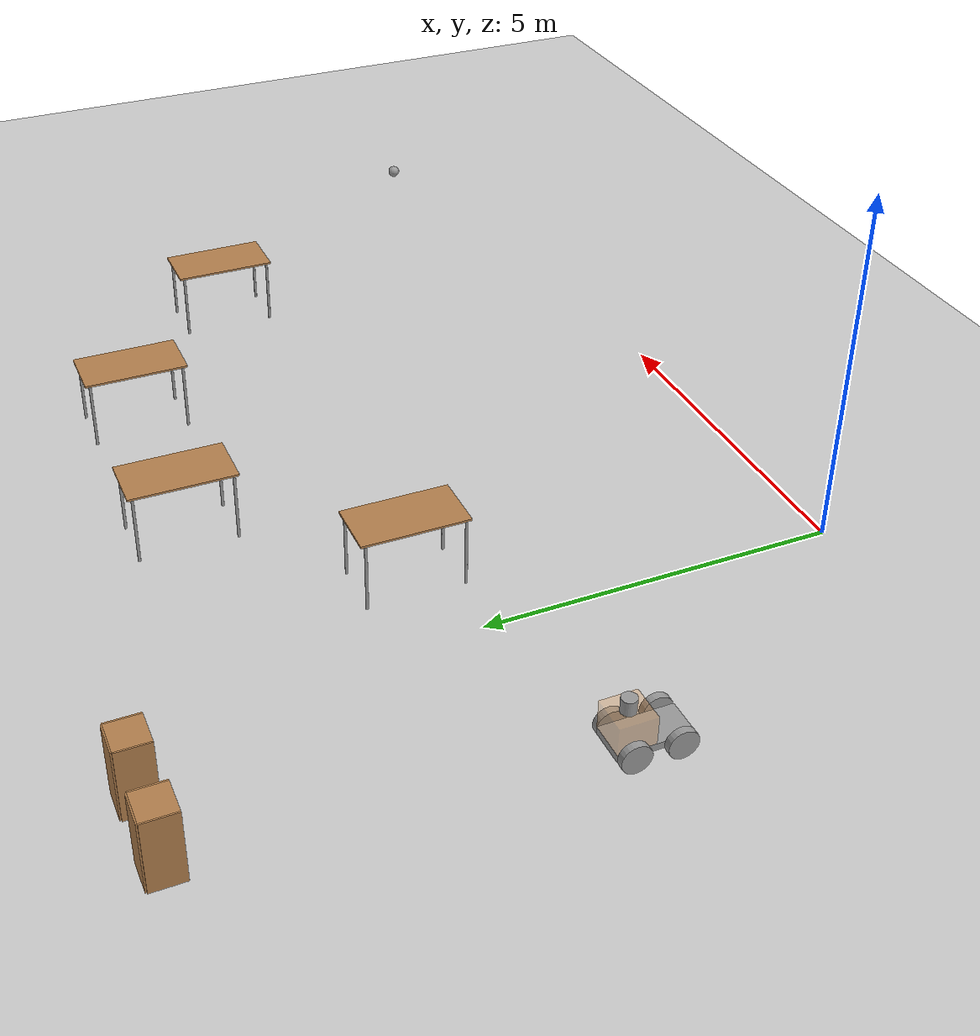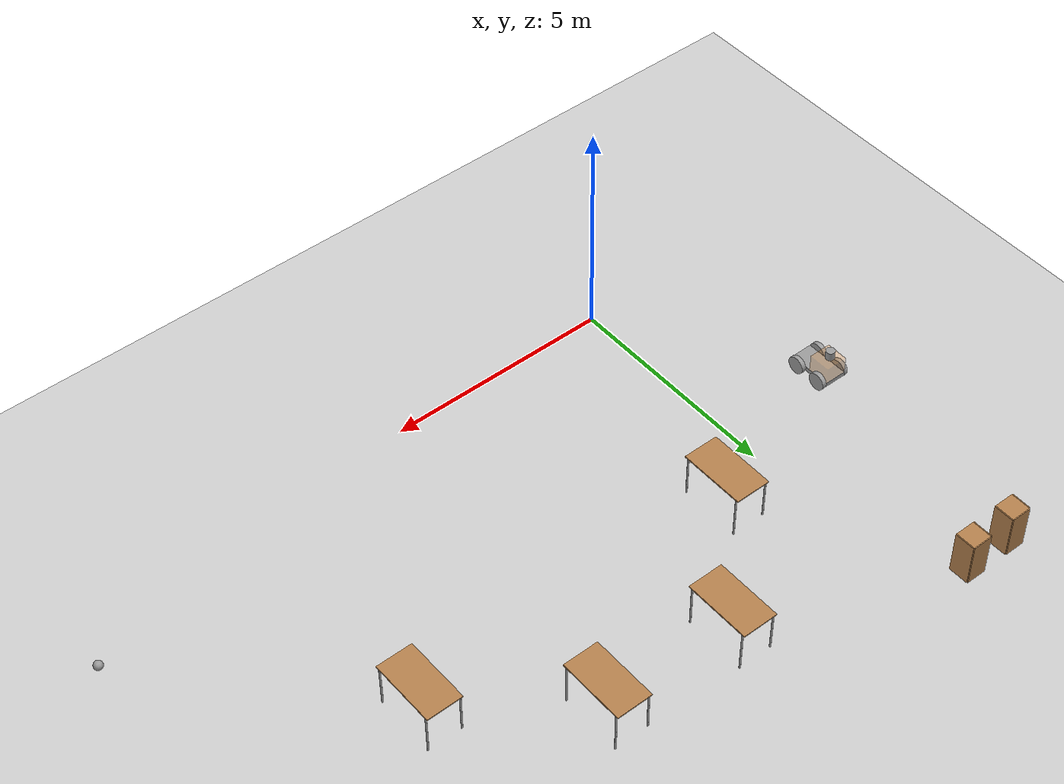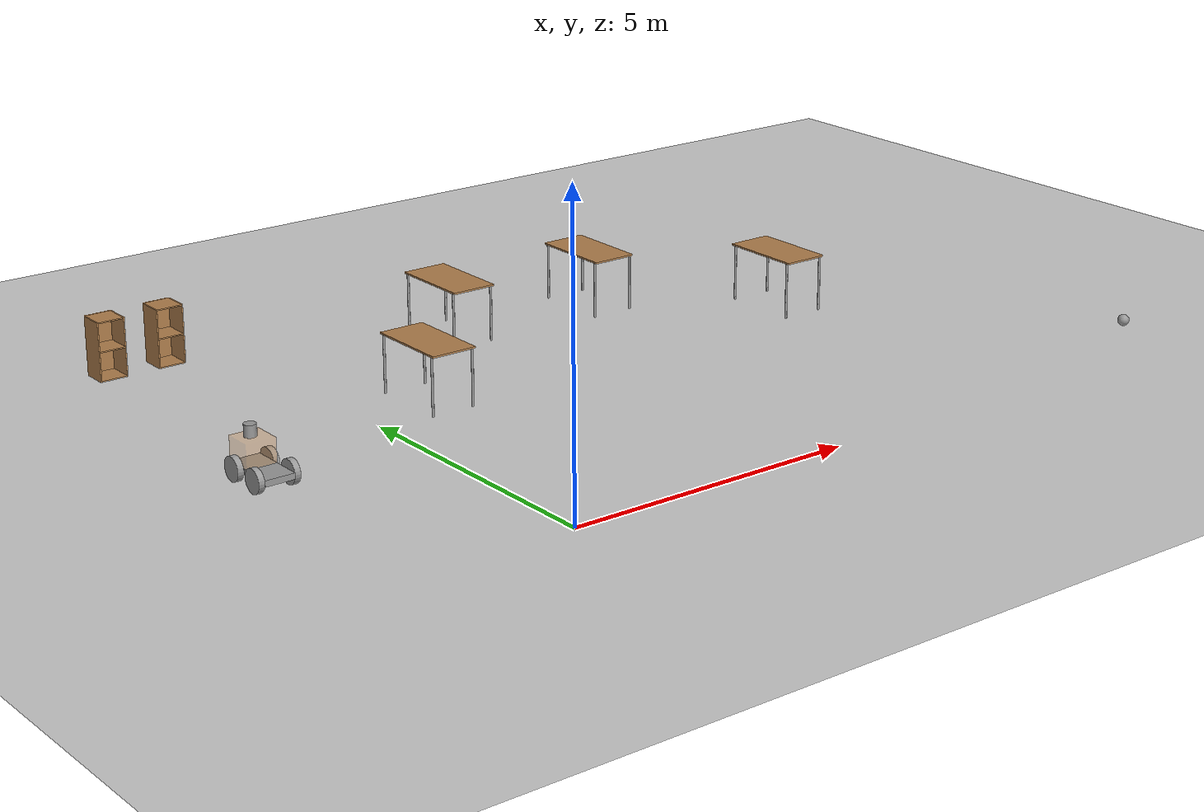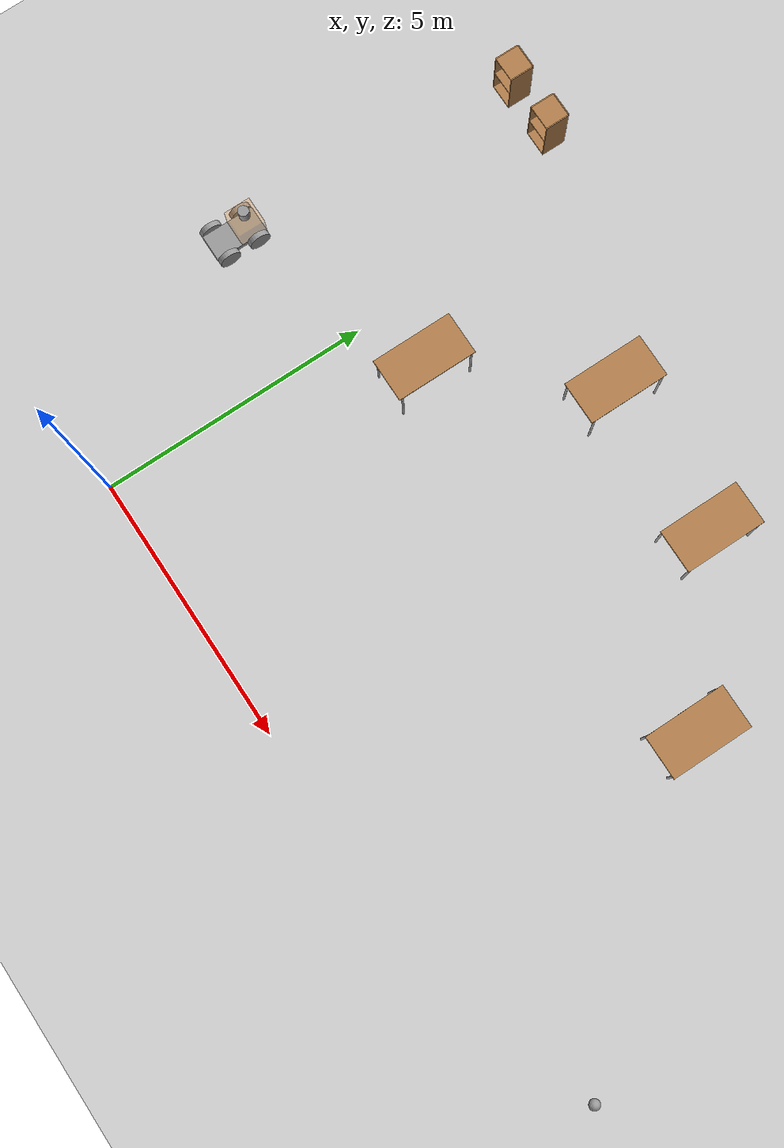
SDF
<sdf version="1.6">
 <world name="default">
  <model name="ground_plane">
   <static>1</static>
   <link name="link">
    <collision name="collision">
     <geometry><plane><normal>0 0 1</normal><size>100 100</size></plane></geometry>
     <surface>
      <contact><collide_bitmask>65535</collide_bitmask></contact>
      <friction><ode><mu>100</mu><mu2>50</mu2></ode></friction>
     </surface>
    </collision>
    <visual name="visual">
     <cast_shadows>0</cast_shadows>
     <geometry><plane><normal>0 0 1</normal><size>100 100</size></plane></geometry>
     <material>
      <script><uri>file://media/materials/scripts/gazebo.material</uri><name>Gazebo/Grey</name></script>
     </material>
    </visual>
   </link>
  </model>
  <model name="table_clone_4_clone_1">
   <static>1</static>
   <link name="link">
    <collision name="surface">
     <pose>0 0 1 0 -0 0</pose>
     <geometry><box><size>1.5 0.8 0.03</size></box></geometry>
     <surface><friction><ode><mu>0.6</mu><mu2>0.6</mu2></ode></friction></surface>
    </collision>
    <visual name="visual1">
     <pose>0 0 1 0 -0 0</pose>
     <geometry><box><size>1.5 0.8 0.03</size></box></geometry>
     <material>
      <script><uri>file://media/materials/scripts/gazebo.material</uri><name>Gazebo/Wood</name></script>
     </material>
    </visual>
    <collision name="front_left_leg">
     <pose>0.68 0.38 0.5 0 -0 0</pose>
     <geometry><cylinder><radius>0.02</radius><length>1</length></cylinder></geometry>
    </collision>
    <visual name="front_left_leg">
     <pose>0.68 0.38 0.5 0 -0 0</pose>
     <geometry><cylinder><radius>0.02</radius><length>1</length></cylinder></geometry>
     <material>
      <script><uri>file://media/materials/scripts/gazebo.material</uri><name>Gazebo/Grey</name></script>
     </material>
    </visual>
    <collision name="front_right_leg">
     <pose>0.68 -0.38 0.5 0 -0 0</pose>
     <geometry><cylinder><radius>0.02</radius><length>1</length></cylinder></geometry>
    </collision>
    <visual name="front_right_leg">
     <pose>0.68 -0.38 0.5 0 -0 0</pose>
     <geometry><cylinder><radius>0.02</radius><length>1</length></cylinder></geometry>
     <material>
      <script><uri>file://media/materials/scripts/gazebo.material</uri><name>Gazebo/Grey</name></script>
     </material>
    </visual>
    <collision name="back_right_leg">
     <pose>-0.68 -0.38 0.5 0 -0 0</pose>
     <geometry><cylinder><radius>0.02</radius><length>1</length></cylinder></geometry>
    </collision>
    <visual name="back_right_leg">
     <pose>-0.68 -0.38 0.5 0 -0 0</pose>
     <geometry><cylinder><radius>0.02</radius><length>1</length></cylinder></geometry>
     <material>
      <script><uri>file://media/materials/scripts/gazebo.material</uri><name>Gazebo/Grey</name></script>
     </material>
    </visual>
    <collision name="back_left_leg">
     <pose>-0.68 0.38 0.5 0 -0 0</pose>
     <geometry><cylinder><radius>0.02</radius><length>1</length></cylinder></geometry>
    </collision>
    <visual name="back_left_leg">
     <pose>-0.68 0.38 0.5 0 -0 0</pose>
     <geometry><cylinder><radius>0.02</radius><length>1</length></cylinder></geometry>
     <material>
      <script><uri>file://media/materials/scripts/gazebo.material</uri><name>Gazebo/Grey</name></script>
     </material>
    </visual>
   </link>
   <pose>3.33324 7.94359 0 0 -0 1.5707</pose>
  </model>
  <model name="table_clone_4_clone_3">
   <static>1</static>
   <link name="link">
    <collision name="surface">
     <pose>0 0 1 0 -0 0</pose>
     <geometry><box><size>1.5 0.8 0.03</size></box></geometry>
     <surface><friction><ode><mu>0.6</mu><mu2>0.6</mu2></ode></friction></surface>
    </collision>
    <visual name="visual1">
     <pose>0 0 1 0 -0 0</pose>
     <geometry><box><size>1.5 0.8 0.03</size></box></geometry>
     <material>
      <script><uri>file://media/materials/scripts/gazebo.material</uri><name>Gazebo/Wood</name></script>
     </material>
    </visual>
    <collision name="front_left_leg">
     <pose>0.68 0.38 0.5 0 -0 0</pose>
     <geometry><cylinder><radius>0.02</radius><length>1</length></cylinder></geometry>
    </collision>
    <visual name="front_left_leg">
     <pose>0.68 0.38 0.5 0 -0 0</pose>
     <geometry><cylinder><radius>0.02</radius><length>1</length></cylinder></geometry>
     <material>
      <script><uri>file://media/materials/scripts/gazebo.material</uri><name>Gazebo/Grey</name></script>
     </material>
    </visual>
    <collision name="front_right_leg">
     <pose>0.68 -0.38 0.5 0 -0 0</pose>
     <geometry><cylinder><radius>0.02</radius><length>1</length></cylinder></geometry>
    </collision>
    <visual name="front_right_leg">
     <pose>0.68 -0.38 0.5 0 -0 0</pose>
     <geometry><cylinder><radius>0.02</radius><length>1</length></cylinder></geometry>
     <material>
      <script><uri>file://media/materials/scripts/gazebo.material</uri><name>Gazebo/Grey</name></script>
     </material>
    </visual>
    <collision name="back_right_leg">
     <pose>-0.68 -0.38 0.5 0 -0 0</pose>
     <geometry><cylinder><radius>0.02</radius><length>1</length></cylinder></geometry>
    </collision>
    <visual name="back_right_leg">
     <pose>-0.68 -0.38 0.5 0 -0 0</pose>
     <geometry><cylinder><radius>0.02</radius><length>1</length></cylinder></geometry>
     <material>
      <script><uri>file://media/materials/scripts/gazebo.material</uri><name>Gazebo/Grey</name></script>
     </material>
    </visual>
    <collision name="back_left_leg">
     <pose>-0.68 0.38 0.5 0 -0 0</pose>
     <geometry><cylinder><radius>0.02</radius><length>1</length></cylinder></geometry>
    </collision>
    <visual name="back_left_leg">
     <pose>-0.68 0.38 0.5 0 -0 0</pose>
     <geometry><cylinder><radius>0.02</radius><length>1</length></cylinder></geometry>
     <material>
      <script><uri>file://media/materials/scripts/gazebo.material</uri><name>Gazebo/Grey</name></script>
     </material>
    </visual>
   </link>
   <pose>8.8179 5.74867 0 0 -0 1.5707</pose>
  </model>
  <model name="table_clone_4_clone_4">
   <static>1</static>
   <link name="link">
    <collision name="surface">
     <pose>0 0 1 0 -0 0</pose>
     <geometry><box><size>1.5 0.8 0.03</size></box></geometry>
     <surface><friction><ode><mu>0.6</mu><mu2>0.6</mu2></ode></friction></surface>
    </collision>
    <visual name="visual1">
     <pose>0 0 1 0 -0 0</pose>
     <geometry><box><size>1.5 0.8 0.03</size></box></geometry>
     <material>
      <script><uri>file://media/materials/scripts/gazebo.material</uri><name>Gazebo/Wood</name></script>
     </material>
    </visual>
    <collision name="front_left_leg">
     <pose>0.68 0.38 0.5 0 -0 0</pose>
     <geometry><cylinder><radius>0.02</radius><length>1</length></cylinder></geometry>
    </collision>
    <visual name="front_left_leg">
     <pose>0.68 0.38 0.5 0 -0 0</pose>
     <geometry><cylinder><radius>0.02</radius><length>1</length></cylinder></geometry>
     <material>
      <script><uri>file://media/materials/scripts/gazebo.material</uri><name>Gazebo/Grey</name></script>
     </material>
    </visual>
    <collision name="front_right_leg">
     <pose>0.68 -0.38 0.5 0 -0 0</pose>
     <geometry><cylinder><radius>0.02</radius><length>1</length></cylinder></geometry>
    </collision>
    <visual name="front_right_leg">
     <pose>0.68 -0.38 0.5 0 -0 0</pose>
     <geometry><cylinder><radius>0.02</radius><length>1</length></cylinder></geometry>
     <material>
      <script><uri>file://media/materials/scripts/gazebo.material</uri><name>Gazebo/Grey</name></script>
     </material>
    </visual>
    <collision name="back_right_leg">
     <pose>-0.68 -0.38 0.5 0 -0 0</pose>
     <geometry><cylinder><radius>0.02</radius><length>1</length></cylinder></geometry>
    </collision>
    <visual name="back_right_leg">
     <pose>-0.68 -0.38 0.5 0 -0 0</pose>
     <geometry><cylinder><radius>0.02</radius><length>1</length></cylinder></geometry>
     <material>
      <script><uri>file://media/materials/scripts/gazebo.material</uri><name>Gazebo/Grey</name></script>
     </material>
    </visual>
    <collision name="back_left_leg">
     <pose>-0.68 0.38 0.5 0 -0 0</pose>
     <geometry><cylinder><radius>0.02</radius><length>1</length></cylinder></geometry>
    </collision>
    <visual name="back_left_leg">
     <pose>-0.68 0.38 0.5 0 -0 0</pose>
     <geometry><cylinder><radius>0.02</radius><length>1</length></cylinder></geometry>
     <material>
      <script><uri>file://media/materials/scripts/gazebo.material</uri><name>Gazebo/Grey</name></script>
     </material>
    </visual>
   </link>
   <pose>6.23427 7.84101 0 0 -0 1.5707</pose>
  </model>
  <model name="table_clone_4_clone_2">
   <static>1</static>
   <link name="link">
    <collision name="surface">
     <pose>0 0 1 0 -0 0</pose>
     <geometry><box><size>1.5 0.8 0.03</size></box></geometry>
     <surface><friction><ode><mu>0.6</mu><mu2>0.6</mu2></ode></friction></surface>
    </collision>
    <visual name="visual1">
     <pose>0 0 1 0 -0 0</pose>
     <geometry><box><size>1.5 0.8 0.03</size></box></geometry>
     <material>
      <script><uri>file://media/materials/scripts/gazebo.material</uri><name>Gazebo/Wood</name></script>
     </material>
    </visual>
    <collision name="front_left_leg">
     <pose>0.68 0.38 0.5 0 -0 0</pose>
     <geometry><cylinder><radius>0.02</radius><length>1</length></cylinder></geometry>
    </collision>
    <visual name="front_left_leg">
     <pose>0.68 0.38 0.5 0 -0 0</pose>
     <geometry><cylinder><radius>0.02</radius><length>1</length></cylinder></geometry>
     <material>
      <script><uri>file://media/materials/scripts/gazebo.material</uri><name>Gazebo/Grey</name></script>
     </material>
    </visual>
    <collision name="front_right_leg">
     <pose>0.68 -0.38 0.5 0 -0 0</pose>
     <geometry><cylinder><radius>0.02</radius><length>1</length></cylinder></geometry>
    </collision>
    <visual name="front_right_leg">
     <pose>0.68 -0.38 0.5 0 -0 0</pose>
     <geometry><cylinder><radius>0.02</radius><length>1</length></cylinder></geometry>
     <material>
      <script><uri>file://media/materials/scripts/gazebo.material</uri><name>Gazebo/Grey</name></script>
     </material>
    </visual>
    <collision name="back_right_leg">
     <pose>-0.68 -0.38 0.5 0 -0 0</pose>
     <geometry><cylinder><radius>0.02</radius><length>1</length></cylinder></geometry>
    </collision>
    <visual name="back_right_leg">
     <pose>-0.68 -0.38 0.5 0 -0 0</pose>
     <geometry><cylinder><radius>0.02</radius><length>1</length></cylinder></geometry>
     <material>
      <script><uri>file://media/materials/scripts/gazebo.material</uri><name>Gazebo/Grey</name></script>
     </material>
    </visual>
    <collision name="back_left_leg">
     <pose>-0.68 0.38 0.5 0 -0 0</pose>
     <geometry><cylinder><radius>0.02</radius><length>1</length></cylinder></geometry>
    </collision>
    <visual name="back_left_leg">
     <pose>-0.68 0.38 0.5 0 -0 0</pose>
     <geometry><cylinder><radius>0.02</radius><length>1</length></cylinder></geometry>
     <material>
      <script><uri>file://media/materials/scripts/gazebo.material</uri><name>Gazebo/Grey</name></script>
     </material>
    </visual>
   </link>
   <pose>1.27128 5.52451 0 0 -0 1.5707</pose>
  </model>
  <model name="cabinet_clone_1_clone">
   <static>1</static>
   <link name="cabinet_bottom_plate">
    <inertial>
     <pose>0 0 -1 0 -0 0</pose>
     <inertia><ixx>2.05</ixx><ixy>0</ixy><ixz>0</ixz><iyy>2.05</iyy><iyz>0</iyz><izz>2.05</izz></inertia>
     <mass>25</mass>
    </inertial>
    <collision name="cabinet_bottom_plate_geom">
     <pose>0 0 0.01 0 -0 0</pose>
     <geometry><box><size>0.45 0.45 0.02</size></box></geometry>
    </collision>
    <visual name="cabinet_bottom_plate_geom_visual">
     <pose>0 0 0.01 0 -0 0</pose>
     <geometry><box><size>0.45 0.45 0.02</size></box></geometry>
     <material>
      <script><uri>file://media/materials/scripts/gazebo.material</uri><name>Gazebo/Wood</name></script>
     </material>
    </visual>
    <collision name="cabinet_bottom_plate_geom_cabinet_back_plate">
     <pose>0.235 0 0.51 0 -0 0</pose>
     <geometry><box><size>0.02 0.45 1.02</size></box></geometry>
    </collision>
    <visual name="cabinet_bottom_plate_geom_cabinet_back_plate_visual">
     <pose>0.235 0 0.51 0 -0 0</pose>
     <geometry><box><size>0.02 0.45 1.02</size></box></geometry>
     <material>
      <script><uri>file://media/materials/scripts/gazebo.material</uri><name>Gazebo/Wood</name></script>
     </material>
    </visual>
    <collision name="cabinet_bottom_plate_geom_cabinet_left_plate">
     <pose>0 0.235 0.51 0 -0 0</pose>
     <geometry><box><size>0.45 0.02 1.02</size></box></geometry>
    </collision>
    <visual name="cabinet_bottom_plate_geom_cabinet_left_plate_visual">
     <pose>0 0.235 0.51 0 -0 0</pose>
     <geometry><box><size>0.45 0.02 1.02</size></box></geometry>
     <material>
      <script><uri>file://media/materials/scripts/gazebo.material</uri><name>Gazebo/Wood</name></script>
     </material>
    </visual>
    <collision name="cabinet_bottom_plate_geom_cabinet_middle_plate">
     <pose>0 0 0.51 0 -0 0</pose>
     <geometry><box><size>0.45 0.45 0.02</size></box></geometry>
    </collision>
    <visual name="cabinet_bottom_plate_geom_cabinet_middle_plate_visual">
     <pose>0 0 0.51 0 -0 0</pose>
     <geometry><box><size>0.45 0.45 0.02</size></box></geometry>
     <material>
      <script><uri>file://media/materials/scripts/gazebo.material</uri><name>Gazebo/Wood</name></script>
     </material>
    </visual>
    <collision name="cabinet_bottom_plate_geom_cabinet_right_plate">
     <pose>0 -0.235 0.51 0 -0 0</pose>
     <geometry><box><size>0.45 0.02 1.02</size></box></geometry>
    </collision>
    <visual name="cabinet_bottom_plate_geom_cabinet_right_plate_visual">
     <pose>0 -0.235 0.51 0 -0 0</pose>
     <geometry><box><size>0.45 0.02 1.02</size></box></geometry>
     <material>
      <script><uri>file://media/materials/scripts/gazebo.material</uri><name>Gazebo/Wood</name></script>
     </material>
    </visual>
    <collision name="cabinet_bottom_plate_geom_cabinet_top_plate">
     <pose>0 0 1.01 0 -0 0</pose>
     <geometry><box><size>0.45 0.45 0.02</size></box></geometry>
    </collision>
    <visual name="cabinet_bottom_plate_geom_cabinet_top_plate_visual">
     <pose>0 0 1.01 0 -0 0</pose>
     <geometry><box><size>0.45 0.45 0.02</size></box></geometry>
     <material>
      <script><uri>file://media/materials/scripts/gazebo.material</uri><name>Gazebo/Wood</name></script>
     </material>
    </visual>
   </link>
   <pose>-2.22681 9.67313 0 0 -0 1.5707</pose>
  </model>
  <model name="cabinet_clone_1_clone_0">
   <static>1</static>
   <link name="cabinet_bottom_plate">
    <inertial>
     <pose>0 0 -1 0 -0 0</pose>
     <inertia><ixx>2.05</ixx><ixy>0</ixy><ixz>0</ixz><iyy>2.05</iyy><iyz>0</iyz><izz>2.05</izz></inertia>
     <mass>25</mass>
    </inertial>
    <collision name="cabinet_bottom_plate_geom">
     <pose>0 0 0.01 0 -0 0</pose>
     <geometry><box><size>0.45 0.45 0.02</size></box></geometry>
    </collision>
    <visual name="cabinet_bottom_plate_geom_visual">
     <pose>0 0 0.01 0 -0 0</pose>
     <geometry><box><size>0.45 0.45 0.02</size></box></geometry>
     <material>
      <script><uri>file://media/materials/scripts/gazebo.material</uri><name>Gazebo/Wood</name></script>
     </material>
    </visual>
    <collision name="cabinet_bottom_plate_geom_cabinet_back_plate">
     <pose>0.235 0 0.51 0 -0 0</pose>
     <geometry><box><size>0.02 0.45 1.02</size></box></geometry>
    </collision>
    <visual name="cabinet_bottom_plate_geom_cabinet_back_plate_visual">
     <pose>0.235 0 0.51 0 -0 0</pose>
     <geometry><box><size>0.02 0.45 1.02</size></box></geometry>
     <material>
      <script><uri>file://media/materials/scripts/gazebo.material</uri><name>Gazebo/Wood</name></script>
     </material>
    </visual>
    <collision name="cabinet_bottom_plate_geom_cabinet_left_plate">
     <pose>0 0.235 0.51 0 -0 0</pose>
     <geometry><box><size>0.45 0.02 1.02</size></box></geometry>
    </collision>
    <visual name="cabinet_bottom_plate_geom_cabinet_left_plate_visual">
     <pose>0 0.235 0.51 0 -0 0</pose>
     <geometry><box><size>0.45 0.02 1.02</size></box></geometry>
     <material>
      <script><uri>file://media/materials/scripts/gazebo.material</uri><name>Gazebo/Wood</name></script>
     </material>
    </visual>
    <collision name="cabinet_bottom_plate_geom_cabinet_middle_plate">
     <pose>0 0 0.51 0 -0 0</pose>
     <geometry><box><size>0.45 0.45 0.02</size></box></geometry>
    </collision>
    <visual name="cabinet_bottom_plate_geom_cabinet_middle_plate_visual">
     <pose>0 0 0.51 0 -0 0</pose>
     <geometry><box><size>0.45 0.45 0.02</size></box></geometry>
     <material>
      <script><uri>file://media/materials/scripts/gazebo.material</uri><name>Gazebo/Wood</name></script>
     </material>
    </visual>
    <collision name="cabinet_bottom_plate_geom_cabinet_right_plate">
     <pose>0 -0.235 0.51 0 -0 0</pose>
     <geometry><box><size>0.45 0.02 1.02</size></box></geometry>
    </collision>
    <visual name="cabinet_bottom_plate_geom_cabinet_right_plate_visual">
     <pose>0 -0.235 0.51 0 -0 0</pose>
     <geometry><box><size>0.45 0.02 1.02</size></box></geometry>
     <material>
      <script><uri>file://media/materials/scripts/gazebo.material</uri><name>Gazebo/Wood</name></script>
     </material>
    </visual>
    <collision name="cabinet_bottom_plate_geom_cabinet_top_plate">
     <pose>0 0 1.01 0 -0 0</pose>
     <geometry><box><size>0.45 0.45 0.02</size></box></geometry>
    </collision>
    <visual name="cabinet_bottom_plate_geom_cabinet_top_plate_visual">
     <pose>0 0 1.01 0 -0 0</pose>
     <geometry><box><size>0.45 0.45 0.02</size></box></geometry>
     <material>
      <script><uri>file://media/materials/scripts/gazebo.material</uri><name>Gazebo/Wood</name></script>
     </material>
    </visual>
   </link>
   <pose>-1.16268 9.68214 0 0 -0 1.5707</pose>
  </model>
  <model name="robot">
   <link name="link_1">
    <pose>0.074286 0.002857 -0.114286 0 -0 0</pose>
    <inertial>
     <mass>1</mass>
     <inertia>
      <ixx>0.166667</ixx>
      <ixy>0</ixy>
      <ixz>0</ixz>
      <iyy>0.166667</iyy>
      <iyz>0</iyz>
      <izz>0.166667</izz>
     </inertia>
    </inertial>
    <visual name="visual">
     <geometry><box><size>1 0.5 0.1</size></box></geometry>
     <material>
      <lighting>1</lighting>
      <script><uri>file://media/materials/scripts/gazebo.material</uri><name>Gazebo/Grey</name></script>
      <shader type="pixel"><normal_map>__default__</normal_map></shader>
      <ambient>0 0 0 0.1</ambient>
      <diffuse>0.7 0.7 0.7 1</diffuse>
      <specular>0.01 0.01 1 1</specular>
      <emissive>0 0 0 1</emissive>
     </material>
    </visual>
    <collision name="collision">
     <geometry><box><size>1 0.5 0.1</size></box></geometry>
     <surface>
      <friction>
       <ode><mu>1</mu><mu2>1</mu2><fdir1>0 0 0</fdir1><slip1>0</slip1><slip2>0</slip2></ode>
       <torsional>
        <coefficient>1</coefficient>
        <patch_radius>0</patch_radius>
        <surface_radius>0</surface_radius>
        <use_patch_radius>1</use_patch_radius>
        <ode><slip>0</slip></ode>
       </torsional>
      </friction>
      <bounce><restitution_coefficient>0</restitution_coefficient><threshold>1e+06</threshold></bounce>
      <contact>
       <collide_without_contact>0</collide_without_contact>
       <collide_without_contact_bitmask>1</collide_without_contact_bitmask>
       <collide_bitmask>1</collide_bitmask>
       <ode>
        <soft_cfm>0</soft_cfm>
        <soft_erp>0.2</soft_erp>
        <kp>1e+13</kp>
        <kd>1</kd>
        <max_vel>0.01</max_vel>
        <min_depth>0</min_depth>
       </ode>
       <bullet>
        <split_impulse>1</split_impulse>
        <split_impulse_penetration_threshold>-0.01</split_impulse_penetration_threshold>
        <soft_cfm>0</soft_cfm>
        <soft_erp>0.2</soft_erp>
        <kp>1e+13</kp>
        <kd>1</kd>
       </bullet>
      </contact>
     </surface>
    </collision>
   </link>
   <link name="link_5">
    <pose>-0.225714 -0.297162 -0.114286 1.5707 -0 0</pose>
    <inertial>
     <mass>1</mass>
     <inertia><ixx>0.145833</ixx><ixy>0</ixy><ixz>0</ixz><iyy>0.145833</iyy><iyz>0</iyz><izz>0.125</izz></inertia>
    </inertial>
    <visual name="visual">
     <geometry><cylinder><radius>0.2</radius><length>0.1</length></cylinder></geometry>
     <material>
      <lighting>1</lighting>
      <script><uri>file://media/materials/scripts/gazebo.material</uri><name>Gazebo/Grey</name></script>
      <shader type="pixel"><normal_map>__default__</normal_map></shader>
      <ambient>0 0 0 0.5</ambient>
      <diffuse>0.7 0.7 0.7 1</diffuse>
      <specular>0.01 0.01 0.01 1</specular>
      <emissive>0 0 0 1</emissive>
     </material>
    </visual>
    <collision name="collision">
     <geometry><cylinder><radius>0.2</radius><length>0.1</length></cylinder></geometry>
     <surface>
      <friction>
       <ode><mu>1</mu><mu2>1</mu2><fdir1>0 0 0</fdir1><slip1>0</slip1><slip2>0</slip2></ode>
       <torsional>
        <coefficient>1</coefficient>
        <patch_radius>0</patch_radius>
        <surface_radius>0</surface_radius>
        <use_patch_radius>1</use_patch_radius>
        <ode><slip>0</slip></ode>
       </torsional>
      </friction>
      <bounce><restitution_coefficient>0</restitution_coefficient><threshold>1e+06</threshold></bounce>
      <contact>
       <collide_without_contact>0</collide_without_contact>
       <collide_without_contact_bitmask>1</collide_without_contact_bitmask>
       <collide_bitmask>1</collide_bitmask>
       <ode>
        <soft_cfm>0</soft_cfm>
        <soft_erp>0.2</soft_erp>
        <kp>1e+13</kp>
        <kd>1</kd>
        <max_vel>0.01</max_vel>
        <min_depth>0</min_depth>
       </ode>
       <bullet>
        <split_impulse>1</split_impulse>
        <split_impulse_penetration_threshold>-0.01</split_impulse_penetration_threshold>
        <soft_cfm>0</soft_cfm>
        <soft_erp>0.2</soft_erp>
        <kp>1e+13</kp>
        <kd>1</kd>
       </bullet>
      </contact>
     </surface>
    </collision>
   </link>
   <link name="link_5_clone">
    <pose>0.374286 -0.297162 -0.114286 1.5707 -0 0</pose>
    <inertial>
     <mass>1</mass>
     <inertia><ixx>0.145833</ixx><ixy>0</ixy><ixz>0</ixz><iyy>0.145833</iyy><iyz>0</iyz><izz>0.125</izz></inertia>
    </inertial>
    <visual name="visual">
     <geometry><cylinder><radius>0.2</radius><length>0.1</length></cylinder></geometry>
     <material>
      <lighting>1</lighting>
      <script><uri>file://media/materials/scripts/gazebo.material</uri><name>Gazebo/Grey</name></script>
      <shader type="pixel"><normal_map>__default__</normal_map></shader>
      <ambient>0 0 0 0.5</ambient>
      <diffuse>0.7 0.7 0.7 1</diffuse>
      <specular>0.01 0.01 0.01 1</specular>
      <emissive>0 0 0 1</emissive>
     </material>
    </visual>
    <collision name="collision">
     <geometry><cylinder><radius>0.2</radius><length>0.1</length></cylinder></geometry>
     <surface>
      <friction>
       <ode><mu>1</mu><mu2>1</mu2><fdir1>0 0 0</fdir1><slip1>0</slip1><slip2>0</slip2></ode>
       <torsional>
        <coefficient>1</coefficient>
        <patch_radius>0</patch_radius>
        <surface_radius>0</surface_radius>
        <use_patch_radius>1</use_patch_radius>
        <ode><slip>0</slip></ode>
       </torsional>
      </friction>
      <bounce><restitution_coefficient>0</restitution_coefficient><threshold>1e+06</threshold></bounce>
      <contact>
       <collide_without_contact>0</collide_without_contact>
       <collide_without_contact_bitmask>1</collide_without_contact_bitmask>
       <collide_bitmask>1</collide_bitmask>
       <ode>
        <soft_cfm>0</soft_cfm>
        <soft_erp>0.2</soft_erp>
        <kp>1e+13</kp>
        <kd>1</kd>
        <max_vel>0.01</max_vel>
        <min_depth>0</min_depth>
       </ode>
       <bullet>
        <split_impulse>1</split_impulse>
        <split_impulse_penetration_threshold>-0.01</split_impulse_penetration_threshold>
        <soft_cfm>0</soft_cfm>
        <soft_erp>0.2</soft_erp>
        <kp>1e+13</kp>
        <kd>1</kd>
       </bullet>
      </contact>
     </surface>
    </collision>
   </link>
   <link name="link_5_clone_0">
    <pose>-0.225714 0.302876 -0.114286 1.5707 -0 0</pose>
    <inertial>
     <mass>1</mass>
     <inertia><ixx>0.145833</ixx><ixy>0</ixy><ixz>0</ixz><iyy>0.145833</iyy><iyz>0</iyz><izz>0.125</izz></inertia>
    </inertial>
    <visual name="visual">
     <geometry><cylinder><radius>0.2</radius><length>0.1</length></cylinder></geometry>
     <material>
      <lighting>1</lighting>
      <script><uri>file://media/materials/scripts/gazebo.material</uri><name>Gazebo/Grey</name></script>
      <shader type="pixel"><normal_map>__default__</normal_map></shader>
      <ambient>0 0 0 0.5</ambient>
      <diffuse>0.7 0.7 0.7 1</diffuse>
      <specular>0.01 0.01 0.01 1</specular>
      <emissive>0 0 0 1</emissive>
     </material>
    </visual>
    <collision name="collision">
     <geometry><cylinder><radius>0.2</radius><length>0.1</length></cylinder></geometry>
     <surface>
      <friction>
       <ode><mu>1</mu><mu2>1</mu2><fdir1>0 0 0</fdir1><slip1>0</slip1><slip2>0</slip2></ode>
       <torsional>
        <coefficient>1</coefficient>
        <patch_radius>0</patch_radius>
        <surface_radius>0</surface_radius>
        <use_patch_radius>1</use_patch_radius>
        <ode><slip>0</slip></ode>
       </torsional>
      </friction>
      <bounce><restitution_coefficient>0</restitution_coefficient><threshold>1e+06</threshold></bounce>
      <contact>
       <collide_without_contact>0</collide_without_contact>
       <collide_without_contact_bitmask>1</collide_without_contact_bitmask>
       <collide_bitmask>1</collide_bitmask>
       <ode>
        <soft_cfm>0</soft_cfm>
        <soft_erp>0.2</soft_erp>
        <kp>1e+13</kp>
        <kd>1</kd>
        <max_vel>0.01</max_vel>
        <min_depth>0</min_depth>
       </ode>
       <bullet>
        <split_impulse>1</split_impulse>
        <split_impulse_penetration_threshold>-0.01</split_impulse_penetration_threshold>
        <soft_cfm>0</soft_cfm>
        <soft_erp>0.2</soft_erp>
        <kp>1e+13</kp>
        <kd>1</kd>
       </bullet>
      </contact>
     </surface>
    </collision>
   </link>
   <link name="link_5_clone_1">
    <pose>0.374286 0.302876 -0.114286 1.5707 -0 0</pose>
    <inertial>
     <mass>1</mass>
     <inertia><ixx>0.145833</ixx><ixy>0</ixy><ixz>0</ixz><iyy>0.145833</iyy><iyz>0</iyz><izz>0.125</izz></inertia>
    </inertial>
    <visual name="visual">
     <geometry><cylinder><radius>0.2</radius><length>0.1</length></cylinder></geometry>
     <material>
      <lighting>1</lighting>
      <script><uri>file://media/materials/scripts/gazebo.material</uri><name>Gazebo/Grey</name></script>
      <shader type="pixel"><normal_map>__default__</normal_map></shader>
      <ambient>0 0 0 0.5</ambient>
      <diffuse>0.7 0.7 0.7 1</diffuse>
      <specular>0.01 0.01 0.01 1</specular>
      <emissive>0 0 0 1</emissive>
     </material>
    </visual>
    <collision name="collision">
     <geometry><cylinder><radius>0.2</radius><length>0.1</length></cylinder></geometry>
     <surface>
      <friction>
       <ode><mu>1</mu><mu2>1</mu2><fdir1>0 0 0</fdir1><slip1>0</slip1><slip2>0</slip2></ode>
       <torsional>
        <coefficient>1</coefficient>
        <patch_radius>0</patch_radius>
        <surface_radius>0</surface_radius>
        <use_patch_radius>1</use_patch_radius>
        <ode><slip>0</slip></ode>
       </torsional>
      </friction>
      <bounce><restitution_coefficient>0</restitution_coefficient><threshold>1e+06</threshold></bounce>
      <contact>
       <collide_without_contact>0</collide_without_contact>
       <collide_without_contact_bitmask>1</collide_without_contact_bitmask>
       <collide_bitmask>1</collide_bitmask>
       <ode>
        <soft_cfm>0</soft_cfm>
        <soft_erp>0.2</soft_erp>
        <kp>1e+13</kp>
        <kd>1</kd>
        <max_vel>0.01</max_vel>
        <min_depth>0</min_depth>
       </ode>
       <bullet>
        <split_impulse>1</split_impulse>
        <split_impulse_penetration_threshold>-0.01</split_impulse_penetration_threshold>
        <soft_cfm>0</soft_cfm>
        <soft_erp>0.2</soft_erp>
        <kp>1e+13</kp>
        <kd>1</kd>
       </bullet>
      </contact>
     </surface>
    </collision>
   </link>
   <link name="link_8">
    <pose>-0.175714 0.002857 0.135714 0 -0 0</pose>
    <inertial>
     <mass>1</mass>
     <inertia>
      <ixx>0.166667</ixx>
      <ixy>0</ixy>
      <ixz>0</ixz>
      <iyy>0.166667</iyy>
      <iyz>0</iyz>
      <izz>0.166667</izz>
     </inertia>
    </inertial>
    <visual name="visual">
     <geometry><box><size>0.5 0.5 0.4</size></box></geometry>
     <material>
      <lighting>1</lighting>
      <script><uri>file://media/materials/scripts/gazebo.material</uri><name>Gazebo/Grey</name></script>
      <shader type="pixel"><normal_map>__default__</normal_map></shader>
      <ambient>1 0.5 0 0.1</ambient>
      <diffuse>0.7 0.7 0.7 1</diffuse>
      <specular>0.01 0.01 0.01 1</specular>
      <emissive>0 0 0 1</emissive>
     </material>
    </visual>
    <collision name="collision">
     <geometry><box><size>0.5 0.5 0.4</size></box></geometry>
     <surface>
      <friction>
       <ode><mu>1</mu><mu2>1</mu2><fdir1>0 0 0</fdir1><slip1>0</slip1><slip2>0</slip2></ode>
       <torsional>
        <coefficient>1</coefficient>
        <patch_radius>0</patch_radius>
        <surface_radius>0</surface_radius>
        <use_patch_radius>1</use_patch_radius>
        <ode><slip>0</slip></ode>
       </torsional>
      </friction>
      <bounce><restitution_coefficient>0</restitution_coefficient><threshold>1e+06</threshold></bounce>
      <contact>
       <collide_without_contact>0</collide_without_contact>
       <collide_without_contact_bitmask>1</collide_without_contact_bitmask>
       <collide_bitmask>1</collide_bitmask>
       <ode>
        <soft_cfm>0</soft_cfm>
        <soft_erp>0.2</soft_erp>
        <kp>1e+13</kp>
        <kd>1</kd>
        <max_vel>0.01</max_vel>
        <min_depth>0</min_depth>
       </ode>
       <bullet>
        <split_impulse>1</split_impulse>
        <split_impulse_penetration_threshold>-0.01</split_impulse_penetration_threshold>
        <soft_cfm>0</soft_cfm>
        <soft_erp>0.2</soft_erp>
        <kp>1e+13</kp>
        <kd>1</kd>
       </bullet>
      </contact>
     </surface>
    </collision>
   </link>
   <link name="link_9">
    <pose>-0.195714 -0.017143 0.435714 0 -0 0</pose>
    <inertial>
     <mass>1</mass>
     <inertia><ixx>0.145833</ixx><ixy>0</ixy><ixz>0</ixz><iyy>0.145833</iyy><iyz>0</iyz><izz>0.125</izz></inertia>
    </inertial>
    <visual name="visual">
     <geometry><cylinder><radius>0.1</radius><length>0.2</length></cylinder></geometry>
     <material>
      <lighting>1</lighting>
      <script><uri>file://media/materials/scripts/gazebo.material</uri><name>Gazebo/Grey</name></script>
      <shader type="pixel"><normal_map>__default__</normal_map></shader>
      <ambient>0.5 0.5 0.5 1</ambient>
      <diffuse>1 1 1 1</diffuse>
      <specular>0.01 0.01 0.01 1</specular>
      <emissive>0 0 0 1</emissive>
     </material>
    </visual>
    <collision name="collision">
     <geometry><cylinder><radius>0.1</radius><length>0.2</length></cylinder></geometry>
     <surface>
      <friction>
       <ode><mu>1</mu><mu2>1</mu2><fdir1>0 0 0</fdir1><slip1>0</slip1><slip2>0</slip2></ode>
       <torsional>
        <coefficient>1</coefficient>
        <patch_radius>0</patch_radius>
        <surface_radius>0</surface_radius>
        <use_patch_radius>1</use_patch_radius>
        <ode><slip>0</slip></ode>
       </torsional>
      </friction>
      <bounce><restitution_coefficient>0</restitution_coefficient><threshold>1e+06</threshold></bounce>
      <contact>
       <collide_without_contact>0</collide_without_contact>
       <collide_without_contact_bitmask>1</collide_without_contact_bitmask>
       <collide_bitmask>1</collide_bitmask>
       <ode>
        <soft_cfm>0</soft_cfm>
        <soft_erp>0.2</soft_erp>
        <kp>1e+13</kp>
        <kd>1</kd>
        <max_vel>0.01</max_vel>
        <min_depth>0</min_depth>
       </ode>
       <bullet>
        <split_impulse>1</split_impulse>
        <split_impulse_penetration_threshold>-0.01</split_impulse_penetration_threshold>
        <soft_cfm>0</soft_cfm>
        <soft_erp>0.2</soft_erp>
        <kp>1e+13</kp>
        <kd>1</kd>
       </bullet>
      </contact>
     </surface>
    </collision>
   </link>
   <joint name="link_1_JOINT_3" type="revolute">
    <parent>link_1</parent>
    <child>link_5</child>
    <axis>
     <xyz>0 0 1</xyz>
     <use_parent_model_frame>0</use_parent_model_frame>
     <limit>
      <lower>-1.79769e+308</lower>
      <upper>1.79769e+308</upper>
      <effort>-1</effort>
      <velocity>-1</velocity>
     </limit>
     <dynamics>
      <spring_reference>0</spring_reference>
      <spring_stiffness>0</spring_stiffness>
      <damping>0</damping>
      <friction>0</friction>
     </dynamics>
    </axis>
    <physics>
     <ode><limit><cfm>0</cfm><erp>0.2</erp></limit><suspension><cfm>0</cfm><erp>0.2</erp></suspension></ode>
    </physics>
   </joint>
   <joint name="link_1_JOINT_4" type="revolute">
    <parent>link_1</parent>
    <child>link_5_clone</child>
    <axis>
     <xyz>0 0 1</xyz>
     <use_parent_model_frame>0</use_parent_model_frame>
     <limit>
      <lower>-1.79769e+308</lower>
      <upper>1.79769e+308</upper>
      <effort>-1</effort>
      <velocity>-1</velocity>
     </limit>
     <dynamics>
      <spring_reference>0</spring_reference>
      <spring_stiffness>0</spring_stiffness>
      <damping>0</damping>
      <friction>0</friction>
     </dynamics>
    </axis>
    <physics>
     <ode><limit><cfm>0</cfm><erp>0.2</erp></limit><suspension><cfm>0</cfm><erp>0.2</erp></suspension></ode>
    </physics>
   </joint>
   <joint name="link_1_JOINT_5" type="revolute">
    <parent>link_1</parent>
    <child>link_5_clone_0</child>
    <axis>
     <xyz>0 0 1</xyz>
     <use_parent_model_frame>0</use_parent_model_frame>
     <limit>
      <lower>-1.79769e+308</lower>
      <upper>1.79769e+308</upper>
      <effort>-1</effort>
      <velocity>-1</velocity>
     </limit>
     <dynamics>
      <spring_reference>0</spring_reference>
      <spring_stiffness>0</spring_stiffness>
      <damping>0</damping>
      <friction>0</friction>
     </dynamics>
    </axis>
    <physics>
     <ode><limit><cfm>0</cfm><erp>0.2</erp></limit><suspension><cfm>0</cfm><erp>0.2</erp></suspension></ode>
    </physics>
   </joint>
   <joint name="link_1_JOINT_7" type="revolute">
    <parent>link_1</parent>
    <child>link_5_clone_1</child>
    <axis>
     <xyz>0 0 1</xyz>
     <use_parent_model_frame>0</use_parent_model_frame>
     <limit>
      <lower>-1.79769e+308</lower>
      <upper>1.79769e+308</upper>
      <effort>-1</effort>
      <velocity>-1</velocity>
     </limit>
     <dynamics>
      <spring_reference>0</spring_reference>
      <spring_stiffness>0</spring_stiffness>
      <damping>0</damping>
      <friction>0</friction>
     </dynamics>
    </axis>
    <physics>
     <ode><limit><cfm>0</cfm><erp>0.2</erp></limit><suspension><cfm>0</cfm><erp>0.2</erp></suspension></ode>
    </physics>
   </joint>
   <joint name="link_1_JOINT_9" type="fixed">
    <parent>link_1</parent>
    <child>link_8</child>
    <physics>
     <ode><limit><cfm>0</cfm><erp>0.2</erp></limit><suspension><cfm>0</cfm><erp>0.2</erp></suspension></ode>
    </physics>
   </joint>
   <joint name="link_8_JOINT_11" type="revolute">
    <parent>link_8</parent>
    <child>link_9</child>
    <axis>
     <xyz>0 0 1</xyz>
     <use_parent_model_frame>0</use_parent_model_frame>
     <limit>
      <lower>-1.79769e+308</lower>
      <upper>1.79769e+308</upper>
      <effort>-1</effort>
      <velocity>-1</velocity>
     </limit>
     <dynamics>
      <spring_reference>0</spring_reference>
      <spring_stiffness>0</spring_stiffness>
      <damping>0</damping>
      <friction>0</friction>
     </dynamics>
    </axis>
    <physics>
     <ode><limit><cfm>0</cfm><erp>0.2</erp></limit><suspension><cfm>0</cfm><erp>0.2</erp></suspension></ode>
    </physics>
   </joint>
   <static>0</static>
   <pose>-2.57362 4.21236 0.314291 1e-06 -0 -1.5708</pose>
  </model>
  <model name="my_ball">
   <link name="link_0">
    <inertial>
     <mass>1</mass>
     <inertia><ixx>0.1</ixx><ixy>0</ixy><ixz>0</ixz><iyy>0.1</iyy><iyz>0</iyz><izz>0.1</izz></inertia>
    </inertial>
    <visual name="visual">
     <geometry><sphere><radius>0.1</radius></sphere></geometry>
     <material>
      <lighting>1</lighting>
      <script><uri>file://media/materials/scripts/gazebo.material</uri><name>Gazebo/Grey</name></script>
      <shader type="pixel"><normal_map>__default__</normal_map></shader>
      <ambient>1 1 1 1</ambient>
      <diffuse>1 1 1 1</diffuse>
      <specular>1 1 1 1</specular>
      <emissive>1 1 1 1</emissive>
     </material>
    </visual>
    <collision name="collision">
     <geometry><sphere><radius>0.1</radius></sphere></geometry>
     <surface>
      <friction>
       <ode><mu>1</mu><mu2>1</mu2><fdir1>0 0 0</fdir1><slip1>0</slip1><slip2>0</slip2></ode>
       <torsional>
        <coefficient>1</coefficient>
        <patch_radius>0</patch_radius>
        <surface_radius>0</surface_radius>
        <use_patch_radius>1</use_patch_radius>
        <ode><slip>0</slip></ode>
       </torsional>
      </friction>
      <bounce><restitution_coefficient>0</restitution_coefficient><threshold>1e+06</threshold></bounce>
      <contact>
       <collide_without_contact>0</collide_without_contact>
       <collide_without_contact_bitmask>1</collide_without_contact_bitmask>
       <collide_bitmask>1</collide_bitmask>
       <ode>
        <soft_cfm>0</soft_cfm>
        <soft_erp>0.2</soft_erp>
        <kp>1e+13</kp>
        <kd>1</kd>
        <max_vel>0.01</max_vel>
        <min_depth>0</min_depth>
       </ode>
       <bullet>
        <split_impulse>1</split_impulse>
        <split_impulse_penetration_threshold>-0.01</split_impulse_penetration_threshold>
        <soft_cfm>0</soft_cfm>
        <soft_erp>0.2</soft_erp>
        <kp>1e+13</kp>
        <kd>1</kd>
       </bullet>
      </contact>
     </surface>
    </collision>
   </link>
   <static>0</static>
   <pose>12.7497 1.16475 0.1 0 -0 0</pose>
  </model>
 </world>
</sdf>
